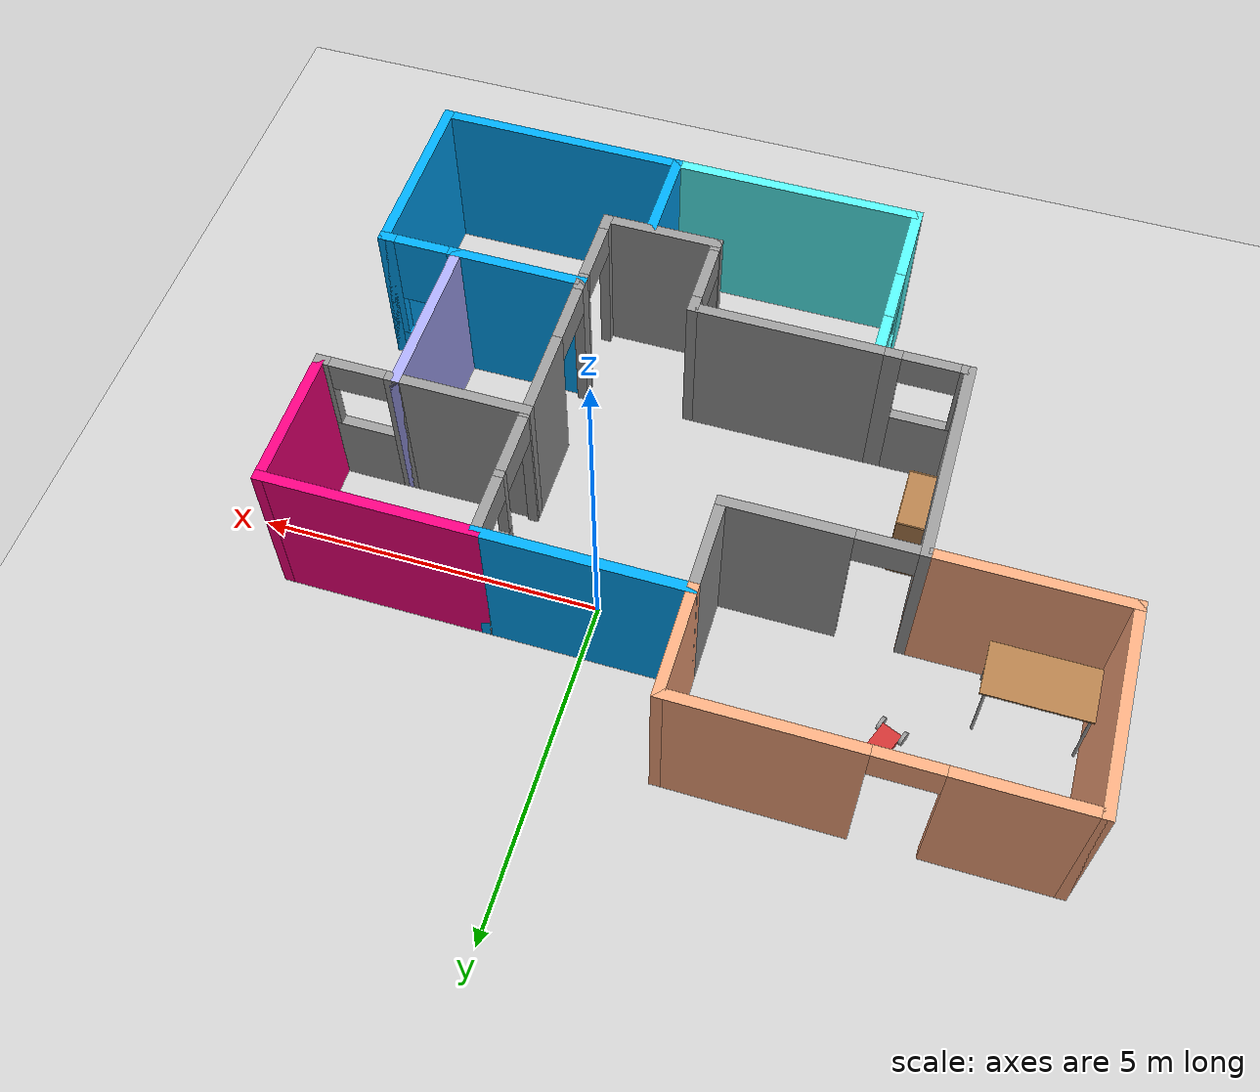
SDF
<sdf version="1.6">
 <world name="default">
  <model name="ground_plane">
   <static>1</static>
   <link name="link">
    <collision name="collision">
     <geometry><plane><normal>0 0 1</normal><size>100 100</size></plane></geometry>
     <surface>
      <contact><collide_bitmask>65535</collide_bitmask></contact>
      <friction><ode><mu>100</mu><mu2>50</mu2></ode></friction>
     </surface>
    </collision>
    <visual name="visual">
     <cast_shadows>0</cast_shadows>
     <geometry><plane><normal>0 0 1</normal><size>100 100</size></plane></geometry>
     <material>
      <script><uri>file://media/materials/scripts/gazebo.material</uri><name>Gazebo/Grey</name></script>
     </material>
    </visual>
   </link>
  </model>
  <model name="Building">
   <pose>-1.24556 -1.99914 0 0 -0 0</pose>
   <link name="Wall_0">
    <pose>-1.575 1.37479 0 0 -0 0</pose>
    <visual name="Wall_0_Visual_0">
     <pose>-1.35895 0 1.25 0 -0 0</pose>
     <geometry><box><size>0.0821 0.15 2.5</size></box></geometry>
     <material>
      <script><uri>file://media/materials/scripts/gazebo.material</uri><name>Gazebo/Grey</name></script>
      <ambient>1 1 1 1</ambient>
     </material>
     <meta><layer>0</layer></meta>
    </visual>
    <collision name="Wall_0_Collision_0">
     <geometry><box><size>0.0821 0.15 2.5</size></box></geometry>
     <pose>-1.35895 0 1.25 0 -0 0</pose>
    </collision>
    <visual name="Wall_0_Visual_1">
     <pose>0.49105 0 1.25 0 -0 0</pose>
     <geometry><box><size>1.8179 0.15 2.5</size></box></geometry>
     <material>
      <script><uri>file://media/materials/scripts/gazebo.material</uri><name>Gazebo/Grey</name></script>
      <ambient>1 1 1 1</ambient>
     </material>
     <meta><layer>0</layer></meta>
    </visual>
    <collision name="Wall_0_Collision_1">
     <geometry><box><size>1.8179 0.15 2.5</size></box></geometry>
     <pose>0.49105 0 1.25 0 -0 0</pose>
    </collision>
    <visual name="Wall_0_Visual_2">
     <pose>-0.8679 0 2.25 0 -0 0</pose>
     <geometry><box><size>0.9 0.15 0.5</size></box></geometry>
     <material>
      <script><uri>file://media/materials/scripts/gazebo.material</uri><name>Gazebo/Grey</name></script>
      <ambient>1 1 1 1</ambient>
     </material>
     <meta><layer>0</layer></meta>
    </visual>
    <collision name="Wall_0_Collision_2">
     <geometry><box><size>0.9 0.15 0.5</size></box></geometry>
     <pose>-0.8679 0 2.25 0 -0 0</pose>
    </collision>
   </link>
   <link name="Wall_1">
    <collision name="Wall_1_Collision">
     <geometry><box><size>1.5 0.15 2.5</size></box></geometry>
     <pose>0 0 1.25 0 -0 0</pose>
    </collision>
    <visual name="Wall_1_Visual">
     <pose>0 0 1.25 0 -0 0</pose>
     <geometry><box><size>1.5 0.15 2.5</size></box></geometry>
     <material>
      <script><uri>file://media/materials/scripts/gazebo.material</uri><name>Gazebo/Grey</name></script>
      <ambient>1 1 1 1</ambient>
     </material>
     <meta><layer>0</layer></meta>
    </visual>
    <pose>-0.25 2.04979 0 0 -0 1.5708</pose>
   </link>
   <link name="Wall_11">
    <collision name="Wall_11_Collision">
     <geometry><box><size>2 0.15 2.5</size></box></geometry>
     <pose>0 0 1.25 0 -0 0</pose>
    </collision>
    <visual name="Wall_11_Visual">
     <pose>0 0 1.25 0 -0 0</pose>
     <geometry><box><size>2 0.15 2.5</size></box></geometry>
     <material>
      <script><uri>file://media/materials/scripts/gazebo.material</uri><name>Gazebo/Grey</name></script>
      <ambient>0 0.666667 1 1</ambient>
     </material>
     <meta><layer>0</layer></meta>
    </visual>
    <pose>3.525 -1.62521 0 0 -0 0</pose>
   </link>
   <link name="Wall_12">
    <collision name="Wall_12_Collision">
     <geometry><box><size>2.5 0.15 2.5</size></box></geometry>
     <pose>0 0 1.25 0 -0 0</pose>
    </collision>
    <visual name="Wall_12_Visual">
     <pose>0 0 1.25 0 -0 0</pose>
     <geometry><box><size>2.5 0.15 2.5</size></box></geometry>
     <material>
      <script><uri>file://media/materials/scripts/gazebo.material</uri><name>Gazebo/Grey</name></script>
      <ambient>0.666667 0.666667 1 1</ambient>
     </material>
     <meta><layer>0</layer></meta>
    </visual>
    <pose>4.45 -0.450208 0 0 -0 1.5708</pose>
   </link>
   <link name="Wall_16">
    <pose>5 -1.62521 0 0 -0 0</pose>
    <visual name="Wall_16_Visual_0">
     <pose>-0.522443 0 1.25 0 -0 0</pose>
     <geometry><box><size>0.205115 0.15 2.5</size></box></geometry>
     <material>
      <script><uri>file://media/materials/scripts/gazebo.material</uri><name>Gazebo/Grey</name></script>
      <ambient>0 0.666667 1 1</ambient>
     </material>
     <meta><layer>0</layer></meta>
    </visual>
    <collision name="Wall_16_Collision_0">
     <geometry><box><size>0.205115 0.15 2.5</size></box></geometry>
     <pose>-0.522443 0 1.25 0 -0 0</pose>
    </collision>
    <visual name="Wall_16_Visual_1">
     <pose>0.102557 0 0.25 0 -0 0</pose>
     <geometry><box><size>1.04489 0.15 0.5</size></box></geometry>
     <material>
      <script><uri>file://media/materials/scripts/gazebo.material</uri><name>Gazebo/Grey</name></script>
      <ambient>0 0.666667 1 1</ambient>
     </material>
     <meta><layer>0</layer></meta>
    </visual>
    <collision name="Wall_16_Collision_1">
     <geometry><box><size>1.04489 0.15 0.5</size></box></geometry>
     <pose>0.102557 0 0.25 0 -0 0</pose>
    </collision>
    <visual name="Wall_16_Visual_2">
     <pose>0.502557 0 1.5 0 -0 0</pose>
     <geometry><box><size>0.244885 0.15 2</size></box></geometry>
     <material>
      <script><uri>file://media/materials/scripts/gazebo.material</uri><name>Gazebo/Grey</name></script>
      <ambient>0 0.666667 1 1</ambient>
     </material>
     <meta><layer>0</layer></meta>
    </visual>
    <collision name="Wall_16_Collision_2">
     <geometry><box><size>0.244885 0.15 2</size></box></geometry>
     <pose>0.502557 0 1.5 0 -0 0</pose>
    </collision>
    <visual name="Wall_16_Visual_3">
     <pose>-0.019885 0 1.9 0 -0 0</pose>
     <geometry><box><size>0.8 0.15 1.2</size></box></geometry>
     <material>
      <script><uri>file://media/materials/scripts/gazebo.material</uri><name>Gazebo/Grey</name></script>
      <ambient>0 0.666667 1 1</ambient>
     </material>
     <meta><layer>0</layer></meta>
    </visual>
    <collision name="Wall_16_Collision_3">
     <geometry><box><size>0.8 0.15 1.2</size></box></geometry>
     <pose>-0.019885 0 1.9 0 -0 0</pose>
    </collision>
   </link>
   <link name="Wall_17">
    <collision name="Wall_17_Collision">
     <geometry><box><size>2.75 0.15 2.5</size></box></geometry>
     <pose>0 0 1.25 0 -0 0</pose>
    </collision>
    <visual name="Wall_17_Visual">
     <pose>0 0 1.25 0 -0 0</pose>
     <geometry><box><size>2.75 0.15 2.5</size></box></geometry>
     <material>
      <script><uri>file://media/materials/scripts/gazebo.material</uri><name>Gazebo/Grey</name></script>
      <ambient>0 0.666667 1 1</ambient>
     </material>
     <meta><layer>0</layer></meta>
    </visual>
    <pose>5.55 -2.92521 0 0 0 -1.5708</pose>
   </link>
   <link name="Wall_24">
    <collision name="Wall_24_Collision">
     <geometry><box><size>2 0.15 2.5</size></box></geometry>
     <pose>0 0 1.25 0 -0 0</pose>
    </collision>
    <visual name="Wall_24_Visual">
     <pose>0 0 1.25 0 -0 0</pose>
     <geometry><box><size>2 0.15 2.5</size></box></geometry>
     <material>
      <script><uri>file://media/materials/scripts/gazebo.material</uri><name>Gazebo/Grey</name></script>
      <ambient>1 1 1 1</ambient>
     </material>
     <meta><layer>0</layer></meta>
    </visual>
    <pose>3.525 0.724792 0 0 -0 3.14159</pose>
   </link>
   <link name="Wall_26">
    <pose>5 0.724792 0 0 -0 0</pose>
    <visual name="Wall_26_Visual_0">
     <pose>-0.511581 0 1.25 0 -0 0</pose>
     <geometry><box><size>0.226838 0.15 2.5</size></box></geometry>
     <material>
      <script><uri>file://media/materials/scripts/gazebo.material</uri><name>Gazebo/Grey</name></script>
      <ambient>1 1 1 1</ambient>
     </material>
     <meta><layer>0</layer></meta>
    </visual>
    <collision name="Wall_26_Collision_0">
     <geometry><box><size>0.226838 0.15 2.5</size></box></geometry>
     <pose>-0.511581 0 1.25 0 -0 0</pose>
    </collision>
    <visual name="Wall_26_Visual_1">
     <pose>0.113419 0 0.6 0 -0 0</pose>
     <geometry><box><size>1.02316 0.15 1.2</size></box></geometry>
     <material>
      <script><uri>file://media/materials/scripts/gazebo.material</uri><name>Gazebo/Grey</name></script>
      <ambient>1 1 1 1</ambient>
     </material>
     <meta><layer>0</layer></meta>
    </visual>
    <collision name="Wall_26_Collision_1">
     <geometry><box><size>1.02316 0.15 1.2</size></box></geometry>
     <pose>0.113419 0 0.6 0 -0 0</pose>
    </collision>
    <visual name="Wall_26_Visual_2">
     <pose>0.513419 0 1.85 0 -0 0</pose>
     <geometry><box><size>0.223162 0.15 1.3</size></box></geometry>
     <material>
      <script><uri>file://media/materials/scripts/gazebo.material</uri><name>Gazebo/Grey</name></script>
      <ambient>1 1 1 1</ambient>
     </material>
     <meta><layer>0</layer></meta>
    </visual>
    <collision name="Wall_26_Collision_2">
     <geometry><box><size>0.223162 0.15 1.3</size></box></geometry>
     <pose>0.513419 0 1.85 0 -0 0</pose>
    </collision>
    <visual name="Wall_26_Visual_3">
     <pose>0.001838 0 2.25 0 -0 0</pose>
     <geometry><box><size>0.8 0.15 0.5</size></box></geometry>
     <material>
      <script><uri>file://media/materials/scripts/gazebo.material</uri><name>Gazebo/Grey</name></script>
      <ambient>1 1 1 1</ambient>
     </material>
     <meta><layer>0</layer></meta>
    </visual>
    <collision name="Wall_26_Collision_3">
     <geometry><box><size>0.8 0.15 0.5</size></box></geometry>
     <pose>0.001838 0 2.25 0 -0 0</pose>
    </collision>
   </link>
   <link name="Wall_29">
    <collision name="Wall_29_Collision">
     <geometry><box><size>3.1 0.15 2.5</size></box></geometry>
     <pose>0 0 1.25 0 -0 0</pose>
    </collision>
    <visual name="Wall_29_Visual">
     <pose>0 0 1.25 0 -0 0</pose>
     <geometry><box><size>3.1 0.15 2.5</size></box></geometry>
     <material>
      <script><uri>file://media/materials/scripts/gazebo.material</uri><name>Gazebo/Grey</name></script>
      <ambient>1 0 0.498039 1</ambient>
     </material>
     <meta><layer>0</layer></meta>
    </visual>
    <pose>4.075 2.72479 0 0 -0 0</pose>
   </link>
   <link name="Wall_3">
    <collision name="Wall_3_Collision">
     <geometry><box><size>3 0.15 2.5</size></box></geometry>
     <pose>0 0 1.25 0 -0 0</pose>
    </collision>
    <visual name="Wall_3_Visual">
     <pose>0 0 1.25 0 -0 0</pose>
     <geometry><box><size>3 0.15 2.5</size></box></geometry>
     <material>
      <script><uri>file://media/materials/scripts/gazebo.material</uri><name>Gazebo/Grey</name></script>
      <ambient>0 0.666667 1 1</ambient>
     </material>
     <meta><layer>0</layer></meta>
    </visual>
    <pose>1.175 2.72479 0 0 -0 0</pose>
   </link>
   <link name="Wall_31">
    <collision name="Wall_31_Collision">
     <geometry><box><size>2.15016 0.15 2.5</size></box></geometry>
     <pose>0 0 1.25 0 -0 0</pose>
    </collision>
    <visual name="Wall_31_Visual">
     <pose>0 0 1.25 0 -0 0</pose>
     <geometry><box><size>2.15016 0.15 2.5</size></box></geometry>
     <material>
      <script><uri>file://media/materials/scripts/gazebo.material</uri><name>Gazebo/Grey</name></script>
      <ambient>1 0 0.498039 1</ambient>
     </material>
     <meta><layer>0</layer></meta>
    </visual>
    <pose>5.55 1.72479 0 0 0 -1.5708</pose>
   </link>
   <link name="Wall_4">
    <pose>2.6 0.549792 0 0 0 -1.5708</pose>
    <visual name="Wall_4_Visual_0">
     <pose>-2.17703 0 1.25 0 -0 0</pose>
     <geometry><box><size>0.145935 0.15 2.5</size></box></geometry>
     <material>
      <script><uri>file://media/materials/scripts/gazebo.material</uri><name>Gazebo/Grey</name></script>
      <ambient>1 1 1 1</ambient>
     </material>
     <meta><layer>0</layer></meta>
    </visual>
    <collision name="Wall_4_Collision_0">
     <geometry><box><size>0.145935 0.15 2.5</size></box></geometry>
     <pose>-2.17703 0 1.25 0 -0 0</pose>
    </collision>
    <visual name="Wall_4_Visual_1">
     <pose>0.412483 0 1.25 0 -0 0</pose>
     <geometry><box><size>1.42285 0.15 2.5</size></box></geometry>
     <material>
      <script><uri>file://media/materials/scripts/gazebo.material</uri><name>Gazebo/Grey</name></script>
      <ambient>1 1 1 1</ambient>
     </material>
     <meta><layer>0</layer></meta>
    </visual>
    <collision name="Wall_4_Collision_1">
     <geometry><box><size>1.42285 0.15 2.5</size></box></geometry>
     <pose>0.412483 0 1.25 0 -0 0</pose>
    </collision>
    <visual name="Wall_4_Visual_2">
     <pose>2.13695 0 1.25 0 -0 0</pose>
     <geometry><box><size>0.226091 0.15 2.5</size></box></geometry>
     <material>
      <script><uri>file://media/materials/scripts/gazebo.material</uri><name>Gazebo/Grey</name></script>
      <ambient>1 1 1 1</ambient>
     </material>
     <meta><layer>0</layer></meta>
    </visual>
    <collision name="Wall_4_Collision_2">
     <geometry><box><size>0.226091 0.15 2.5</size></box></geometry>
     <pose>2.13695 0 1.25 0 -0 0</pose>
    </collision>
    <visual name="Wall_4_Visual_3">
     <pose>-1.65151 0 0.6 0 -0 0</pose>
     <geometry><box><size>0.905122 0.15 1.2</size></box></geometry>
     <material>
      <script><uri>file://media/materials/scripts/gazebo.material</uri><name>Gazebo/Grey</name></script>
      <ambient>1 1 1 1</ambient>
     </material>
     <meta><layer>0</layer></meta>
    </visual>
    <collision name="Wall_4_Collision_3">
     <geometry><box><size>0.905122 0.15 1.2</size></box></geometry>
     <pose>-1.65151 0 0.6 0 -0 0</pose>
    </collision>
    <visual name="Wall_4_Visual_4">
     <pose>-1.25151 0 1.85 0 -0 0</pose>
     <geometry><box><size>0.105122 0.15 1.3</size></box></geometry>
     <material>
      <script><uri>file://media/materials/scripts/gazebo.material</uri><name>Gazebo/Grey</name></script>
      <ambient>1 1 1 1</ambient>
     </material>
     <meta><layer>0</layer></meta>
    </visual>
    <collision name="Wall_4_Collision_4">
     <geometry><box><size>0.105122 0.15 1.3</size></box></geometry>
     <pose>-1.25151 0 1.85 0 -0 0</pose>
    </collision>
    <visual name="Wall_4_Visual_5">
     <pose>1.57391 0 2.25 0 -0 0</pose>
     <geometry><box><size>0.9 0.15 0.5</size></box></geometry>
     <material>
      <script><uri>file://media/materials/scripts/gazebo.material</uri><name>Gazebo/Grey</name></script>
      <ambient>1 1 1 1</ambient>
     </material>
     <meta><layer>0</layer></meta>
    </visual>
    <collision name="Wall_4_Collision_5">
     <geometry><box><size>0.9 0.15 0.5</size></box></geometry>
     <pose>1.57391 0 2.25 0 -0 0</pose>
    </collision>
    <visual name="Wall_4_Visual_6">
     <pose>-0.748944 0 2.25 0 -0 0</pose>
     <geometry><box><size>0.9 0.15 0.5</size></box></geometry>
     <material>
      <script><uri>file://media/materials/scripts/gazebo.material</uri><name>Gazebo/Grey</name></script>
      <ambient>1 1 1 1</ambient>
     </material>
     <meta><layer>0</layer></meta>
    </visual>
    <collision name="Wall_4_Collision_6">
     <geometry><box><size>0.9 0.15 0.5</size></box></geometry>
     <pose>-0.748944 0 2.25 0 -0 0</pose>
    </collision>
    <visual name="Wall_4_Visual_7">
     <pose>-1.70406 0 2.25 0 -0 0</pose>
     <geometry><box><size>0.8 0.15 0.5</size></box></geometry>
     <material>
      <script><uri>file://media/materials/scripts/gazebo.material</uri><name>Gazebo/Grey</name></script>
      <ambient>1 1 1 1</ambient>
     </material>
     <meta><layer>0</layer></meta>
    </visual>
    <collision name="Wall_4_Collision_7">
     <geometry><box><size>0.8 0.15 0.5</size></box></geometry>
     <pose>-1.70406 0 2.25 0 -0 0</pose>
    </collision>
   </link>
   <link name="Wall_41">
    <pose>2.6 -2.24421 0 0 0 -1.5708</pose>
    <visual name="Wall_41_Visual_0">
     <pose>-0.586201 0 1.25 0 -0 0</pose>
     <geometry><box><size>0.21618 0.15 2.5</size></box></geometry>
     <material>
      <script><uri>file://media/materials/scripts/gazebo.material</uri><name>Gazebo/Grey</name></script>
      <ambient>1 1 1 1</ambient>
     </material>
     <meta><layer>0</layer></meta>
    </visual>
    <collision name="Wall_41_Collision_0">
     <geometry><box><size>0.21618 0.15 2.5</size></box></geometry>
     <pose>-0.586201 0 1.25 0 -0 0</pose>
    </collision>
    <visual name="Wall_41_Visual_1">
     <pose>0.55809 0 1.25 0 -0 0</pose>
     <geometry><box><size>0.272401 0.15 2.5</size></box></geometry>
     <material>
      <script><uri>file://media/materials/scripts/gazebo.material</uri><name>Gazebo/Grey</name></script>
      <ambient>1 1 1 1</ambient>
     </material>
     <meta><layer>0</layer></meta>
    </visual>
    <collision name="Wall_41_Collision_1">
     <geometry><box><size>0.272401 0.15 2.5</size></box></geometry>
     <pose>0.55809 0 1.25 0 -0 0</pose>
    </collision>
    <visual name="Wall_41_Visual_2">
     <pose>-0.028111 0 2.25 0 -0 0</pose>
     <geometry><box><size>0.9 0.15 0.5</size></box></geometry>
     <material>
      <script><uri>file://media/materials/scripts/gazebo.material</uri><name>Gazebo/Grey</name></script>
      <ambient>1 1 1 1</ambient>
     </material>
     <meta><layer>0</layer></meta>
    </visual>
    <collision name="Wall_41_Collision_2">
     <geometry><box><size>0.9 0.15 0.5</size></box></geometry>
     <pose>-0.028111 0 2.25 0 -0 0</pose>
    </collision>
   </link>
   <link name="Wall_42">
    <collision name="Wall_42_Collision">
     <geometry><box><size>1.78 0.15 2.5</size></box></geometry>
     <pose>0 0 1.25 0 -0 0</pose>
    </collision>
    <visual name="Wall_42_Visual">
     <pose>0 0 1.25 0 -0 0</pose>
     <geometry><box><size>1.78 0.15 2.5</size></box></geometry>
     <material>
      <script><uri>file://media/materials/scripts/gazebo.material</uri><name>Gazebo/Grey</name></script>
      <ambient>1 1 1 1</ambient>
     </material>
     <meta><layer>0</layer></meta>
    </visual>
    <pose>1.785 -2.86321 0 0 -0 3.14159</pose>
   </link>
   <link name="Wall_43">
    <pose>0.97 -2.24421 0 0 -0 1.5708</pose>
    <visual name="Wall_43_Visual_0">
     <pose>-0.58591 0 1.25 0 -0 0</pose>
     <geometry><box><size>0.216762 0.15 2.5</size></box></geometry>
     <material>
      <script><uri>file://media/materials/scripts/gazebo.material</uri><name>Gazebo/Grey</name></script>
      <ambient>1 1 1 1</ambient>
     </material>
     <meta><layer>0</layer></meta>
    </visual>
    <collision name="Wall_43_Collision_0">
     <geometry><box><size>0.216762 0.15 2.5</size></box></geometry>
     <pose>-0.58591 0 1.25 0 -0 0</pose>
    </collision>
    <visual name="Wall_43_Visual_1">
     <pose>0.558381 0 1.25 0 -0 0</pose>
     <geometry><box><size>0.271819 0.15 2.5</size></box></geometry>
     <material>
      <script><uri>file://media/materials/scripts/gazebo.material</uri><name>Gazebo/Grey</name></script>
      <ambient>1 1 1 1</ambient>
     </material>
     <meta><layer>0</layer></meta>
    </visual>
    <collision name="Wall_43_Collision_1">
     <geometry><box><size>0.271819 0.15 2.5</size></box></geometry>
     <pose>0.558381 0 1.25 0 -0 0</pose>
    </collision>
    <visual name="Wall_43_Visual_2">
     <pose>-0.027529 0 2.25 0 -0 0</pose>
     <geometry><box><size>0.9 0.15 0.5</size></box></geometry>
     <material>
      <script><uri>file://media/materials/scripts/gazebo.material</uri><name>Gazebo/Grey</name></script>
      <ambient>1 1 1 1</ambient>
     </material>
     <meta><layer>0</layer></meta>
    </visual>
    <collision name="Wall_43_Collision_2">
     <geometry><box><size>0.9 0.15 0.5</size></box></geometry>
     <pose>-0.027529 0 2.25 0 -0 0</pose>
    </collision>
   </link>
   <link name="Wall_46">
    <collision name="Wall_46_Collision">
     <geometry><box><size>3.75 0.15 2.5</size></box></geometry>
     <pose>0 0 1.25 0 -0 0</pose>
    </collision>
    <visual name="Wall_46_Visual">
     <pose>0 0 1.25 0 -0 0</pose>
     <geometry><box><size>3.75 0.15 2.5</size></box></geometry>
     <material>
      <script><uri>file://media/materials/scripts/gazebo.material</uri><name>Gazebo/Grey</name></script>
      <ambient>0 0.666667 1 1</ambient>
     </material>
     <meta><layer>0</layer></meta>
    </visual>
    <pose>3.75 -4.22521 0 0 -0 3.14159</pose>
   </link>
   <link name="Wall_47">
    <collision name="Wall_47_Collision">
     <geometry><box><size>1.5 0.15 2.5</size></box></geometry>
     <pose>0 0 1.25 0 -0 0</pose>
    </collision>
    <visual name="Wall_47_Visual">
     <pose>0 0 1.25 0 -0 0</pose>
     <geometry><box><size>1.5 0.15 2.5</size></box></geometry>
     <material>
      <script><uri>file://media/materials/scripts/gazebo.material</uri><name>Gazebo/Grey</name></script>
      <ambient>0 0.666667 1 1</ambient>
     </material>
     <meta><layer>0</layer></meta>
    </visual>
    <pose>1.95 -3.55021 0 0 -0 1.5708</pose>
   </link>
   <link name="Wall_49">
    <collision name="Wall_49_Collision">
     <geometry><box><size>3.75 0.15 2.5</size></box></geometry>
     <pose>0 0 1.25 0 -0 0</pose>
    </collision>
    <visual name="Wall_49_Visual">
     <pose>0 0 1.25 0 -0 0</pose>
     <geometry><box><size>3.75 0.15 2.5</size></box></geometry>
     <material>
      <script><uri>file://media/materials/scripts/gazebo.material</uri><name>Gazebo/Grey</name></script>
      <ambient>0.333333 1 1 1</ambient>
     </material>
     <meta><layer>0</layer></meta>
    </visual>
    <pose>0.15 -4.22521 0 0 -0 3.14159</pose>
   </link>
   <link name="Wall_51">
    <pose>-1.65 -2.92521 0 0 -0 1.5708</pose>
    <visual name="Wall_51_Visual_0">
     <pose>-0.747196 0 1.25 0 -0 0</pose>
     <geometry><box><size>1.25561 0.15 2.5</size></box></geometry>
     <material>
      <script><uri>file://media/materials/scripts/gazebo.material</uri><name>Gazebo/Grey</name></script>
      <ambient>0.333333 1 1 1</ambient>
     </material>
     <meta><layer>0</layer></meta>
    </visual>
    <collision name="Wall_51_Collision_0">
     <geometry><box><size>1.25561 0.15 2.5</size></box></geometry>
     <pose>-0.747196 0 1.25 0 -0 0</pose>
    </collision>
    <visual name="Wall_51_Visual_1">
     <pose>0.627804 0 0.6 0 -0 0</pose>
     <geometry><box><size>1.49439 0.15 1.2</size></box></geometry>
     <material>
      <script><uri>file://media/materials/scripts/gazebo.material</uri><name>Gazebo/Grey</name></script>
      <ambient>0.333333 1 1 1</ambient>
     </material>
     <meta><layer>0</layer></meta>
    </visual>
    <collision name="Wall_51_Collision_1">
     <geometry><box><size>1.49439 0.15 1.2</size></box></geometry>
     <pose>0.627804 0 0.6 0 -0 0</pose>
    </collision>
    <visual name="Wall_51_Visual_2">
     <pose>1.0278 0 1.85 0 -0 0</pose>
     <geometry><box><size>0.694393 0.15 1.3</size></box></geometry>
     <material>
      <script><uri>file://media/materials/scripts/gazebo.material</uri><name>Gazebo/Grey</name></script>
      <ambient>0.333333 1 1 1</ambient>
     </material>
     <meta><layer>0</layer></meta>
    </visual>
    <collision name="Wall_51_Collision_2">
     <geometry><box><size>0.694393 0.15 1.3</size></box></geometry>
     <pose>1.0278 0 1.85 0 -0 0</pose>
    </collision>
    <visual name="Wall_51_Visual_3">
     <pose>0.280607 0 2.25 0 -0 0</pose>
     <geometry><box><size>0.8 0.15 0.5</size></box></geometry>
     <material>
      <script><uri>file://media/materials/scripts/gazebo.material</uri><name>Gazebo/Grey</name></script>
      <ambient>0.333333 1 1 1</ambient>
     </material>
     <meta><layer>0</layer></meta>
    </visual>
    <collision name="Wall_51_Collision_3">
     <geometry><box><size>0.8 0.15 0.5</size></box></geometry>
     <pose>0.280607 0 2.25 0 -0 0</pose>
    </collision>
   </link>
   <link name="Wall_52">
    <collision name="Wall_52_Collision">
     <geometry><box><size>2.77 0.15 2.5</size></box></geometry>
     <pose>0 0 1.25 0 -0 0</pose>
    </collision>
    <visual name="Wall_52_Visual">
     <pose>0 0 1.25 0 -0 0</pose>
     <geometry><box><size>2.77 0.15 2.5</size></box></geometry>
     <material>
      <script><uri>file://media/materials/scripts/gazebo.material</uri><name>Gazebo/Grey</name></script>
      <ambient>1 1 1 1</ambient>
     </material>
     <meta><layer>0</layer></meta>
    </visual>
    <pose>-0.34 -1.62521 0 0 -0 0</pose>
   </link>
   <link name="Wall_54">
    <pose>-2.275 -1.62521 0 0 -0 3.14159</pose>
    <visual name="Wall_54_Visual_0">
     <pose>-0.501383 0 1.25 0 -0 0</pose>
     <geometry><box><size>0.397234 0.15 2.5</size></box></geometry>
     <material>
      <script><uri>file://media/materials/scripts/gazebo.material</uri><name>Gazebo/Grey</name></script>
      <ambient>1 1 1 1</ambient>
     </material>
     <meta><layer>0</layer></meta>
    </visual>
    <collision name="Wall_54_Collision_0">
     <geometry><box><size>0.397234 0.15 2.5</size></box></geometry>
     <pose>-0.501383 0 1.25 0 -0 0</pose>
    </collision>
    <visual name="Wall_54_Visual_1">
     <pose>0.198617 0 0.6 0 -0 0</pose>
     <geometry><box><size>1.00277 0.15 1.2</size></box></geometry>
     <material>
      <script><uri>file://media/materials/scripts/gazebo.material</uri><name>Gazebo/Grey</name></script>
      <ambient>1 1 1 1</ambient>
     </material>
     <meta><layer>0</layer></meta>
    </visual>
    <collision name="Wall_54_Collision_1">
     <geometry><box><size>1.00277 0.15 1.2</size></box></geometry>
     <pose>0.198617 0 0.6 0 -0 0</pose>
    </collision>
    <visual name="Wall_54_Visual_2">
     <pose>0.598617 0 1.85 0 -0 0</pose>
     <geometry><box><size>0.202766 0.15 1.3</size></box></geometry>
     <material>
      <script><uri>file://media/materials/scripts/gazebo.material</uri><name>Gazebo/Grey</name></script>
      <ambient>1 1 1 1</ambient>
     </material>
     <meta><layer>0</layer></meta>
    </visual>
    <collision name="Wall_54_Collision_2">
     <geometry><box><size>0.202766 0.15 1.3</size></box></geometry>
     <pose>0.598617 0 1.85 0 -0 0</pose>
    </collision>
    <visual name="Wall_54_Visual_3">
     <pose>0.097234 0 2.25 0 -0 0</pose>
     <geometry><box><size>0.8 0.15 0.5</size></box></geometry>
     <material>
      <script><uri>file://media/materials/scripts/gazebo.material</uri><name>Gazebo/Grey</name></script>
      <ambient>1 1 1 1</ambient>
     </material>
     <meta><layer>0</layer></meta>
    </visual>
    <collision name="Wall_54_Collision_3">
     <geometry><box><size>0.8 0.15 0.5</size></box></geometry>
     <pose>0.097234 0 2.25 0 -0 0</pose>
    </collision>
   </link>
   <link name="Wall_55">
    <collision name="Wall_55_Collision">
     <geometry><box><size>3.15042 0.15 2.5</size></box></geometry>
     <pose>0 0 1.25 0 -0 0</pose>
    </collision>
    <visual name="Wall_55_Visual">
     <pose>0 0 1.25 0 -0 0</pose>
     <geometry><box><size>3.15042 0.15 2.5</size></box></geometry>
     <material>
      <script><uri>file://media/materials/scripts/gazebo.material</uri><name>Gazebo/Grey</name></script>
      <ambient>1 1 1 1</ambient>
     </material>
     <meta><layer>0</layer></meta>
    </visual>
    <pose>-2.9 -0.125208 0 0 -0 1.5708</pose>
   </link>
   <link name="Wall_57">
    <collision name="Wall_57_Collision">
     <geometry><box><size>2.8 0.15 2.5</size></box></geometry>
     <pose>0 0 1.25 0 -0 0</pose>
    </collision>
    <visual name="Wall_57_Visual">
     <pose>0 0 1.25 0 -0 0</pose>
     <geometry><box><size>2.8 0.15 2.5</size></box></geometry>
     <material>
      <script><uri>file://media/materials/scripts/gazebo.material</uri><name>Gazebo/Grey</name></script>
      <ambient>1 0.666667 0.498039 1</ambient>
     </material>
     <meta><layer>0</layer></meta>
    </visual>
    <pose>-4.225 1.37479 0 0 -0 3.14159</pose>
   </link>
   <link name="Wall_60">
    <collision name="Wall_60_Collision">
     <geometry><box><size>3 0.15 2.5</size></box></geometry>
     <pose>0 0 1.25 0 -0 0</pose>
    </collision>
    <visual name="Wall_60_Visual">
     <pose>0 0 1.25 0 -0 0</pose>
     <geometry><box><size>3 0.15 2.5</size></box></geometry>
     <material>
      <script><uri>file://media/materials/scripts/gazebo.material</uri><name>Gazebo/Grey</name></script>
      <ambient>1 0.666667 0.498039 1</ambient>
     </material>
     <meta><layer>0</layer></meta>
    </visual>
    <pose>-5.55 2.79979 0 0 -0 1.5708</pose>
   </link>
   <link name="Wall_62">
    <pose>-2.9 4.22479 0 0 -0 0</pose>
    <visual name="Wall_62_Visual_0">
     <pose>-1.77004 0 1.25 0 -0 0</pose>
     <geometry><box><size>1.90993 0.15 2.5</size></box></geometry>
     <material>
      <script><uri>file://media/materials/scripts/gazebo.material</uri><name>Gazebo/Grey</name></script>
      <ambient>1 0.666667 0.498039 1</ambient>
     </material>
     <meta><layer>0</layer></meta>
    </visual>
    <collision name="Wall_62_Collision_0">
     <geometry><box><size>1.90993 0.15 2.5</size></box></geometry>
     <pose>-1.77004 0 1.25 0 -0 0</pose>
    </collision>
    <visual name="Wall_62_Visual_1">
     <pose>1.40496 0 1.25 0 -0 0</pose>
     <geometry><box><size>2.64007 0.15 2.5</size></box></geometry>
     <material>
      <script><uri>file://media/materials/scripts/gazebo.material</uri><name>Gazebo/Grey</name></script>
      <ambient>1 0.666667 0.498039 1</ambient>
     </material>
     <meta><layer>0</layer></meta>
    </visual>
    <collision name="Wall_62_Collision_1">
     <geometry><box><size>2.64007 0.15 2.5</size></box></geometry>
     <pose>1.40496 0 1.25 0 -0 0</pose>
    </collision>
    <visual name="Wall_62_Visual_2">
     <pose>-0.365072 0 2.25 0 -0 0</pose>
     <geometry><box><size>0.9 0.15 0.5</size></box></geometry>
     <material>
      <script><uri>file://media/materials/scripts/gazebo.material</uri><name>Gazebo/Grey</name></script>
      <ambient>1 0.666667 0.498039 1</ambient>
     </material>
     <meta><layer>0</layer></meta>
    </visual>
    <collision name="Wall_62_Collision_2">
     <geometry><box><size>0.9 0.15 0.5</size></box></geometry>
     <pose>-0.365072 0 2.25 0 -0 0</pose>
    </collision>
   </link>
   <link name="Wall_63">
    <collision name="Wall_63_Collision">
     <geometry><box><size>1.65083 0.15 2.5</size></box></geometry>
     <pose>0 0 1.25 0 -0 0</pose>
    </collision>
    <visual name="Wall_63_Visual">
     <pose>0 0 1.25 0 -0 0</pose>
     <geometry><box><size>1.65083 0.15 2.5</size></box></geometry>
     <material>
      <script><uri>file://media/materials/scripts/gazebo.material</uri><name>Gazebo/Grey</name></script>
      <ambient>1 0.666667 0.498039 1</ambient>
     </material>
     <meta><layer>0</layer></meta>
    </visual>
    <pose>-0.25 3.47479 0 0 0 -1.5708</pose>
   </link>
   <static>1</static>
  </model>
  <model name="bookshelf">
   <static>1</static>
   <link name="link">
    <inertial><mass>1</mass></inertial>
    <collision name="back">
     <pose>0 0.005 0.6 0 -0 0</pose>
     <geometry><box><size>0.9 0.01 1.2</size></box></geometry>
    </collision>
    <visual name="visual1">
     <pose>0 0.005 0.6 0 -0 0</pose>
     <geometry><box><size>0.9 0.01 1.2</size></box></geometry>
     <material>
      <script><uri>file://media/materials/scripts/gazebo.material</uri><name>Gazebo/Wood</name></script>
     </material>
    </visual>
    <collision name="left_side">
     <pose>0.45 -0.195 0.6 0 -0 0</pose>
     <geometry><box><size>0.02 0.4 1.2</size></box></geometry>
    </collision>
    <visual name="visual2">
     <pose>0.45 -0.195 0.6 0 -0 0</pose>
     <geometry><box><size>0.02 0.4 1.2</size></box></geometry>
     <material>
      <script><uri>file://media/materials/scripts/gazebo.material</uri><name>Gazebo/Wood</name></script>
     </material>
    </visual>
    <collision name="right_side">
     <pose>-0.45 -0.195 0.6 0 -0 0</pose>
     <geometry><box><size>0.02 0.4 1.2</size></box></geometry>
    </collision>
    <visual name="visual3">
     <pose>-0.45 -0.195 0.6 0 -0 0</pose>
     <geometry><box><size>0.02 0.4 1.2</size></box></geometry>
     <material>
      <script><uri>file://media/materials/scripts/gazebo.material</uri><name>Gazebo/Wood</name></script>
     </material>
    </visual>
    <collision name="bottom">
     <pose>0 -0.195 0.03 0 -0 0</pose>
     <geometry><box><size>0.88 0.4 0.06</size></box></geometry>
    </collision>
    <visual name="visual4">
     <pose>0 -0.195 0.03 0 -0 0</pose>
     <geometry><box><size>0.88 0.4 0.06</size></box></geometry>
     <material>
      <script><uri>file://media/materials/scripts/gazebo.material</uri><name>Gazebo/Wood</name></script>
     </material>
    </visual>
    <collision name="top">
     <pose>0 -0.195 1.19 0 -0 0</pose>
     <geometry><box><size>0.88 0.4 0.02</size></box></geometry>
    </collision>
    <visual name="visual5">
     <pose>0 -0.195 1.19 0 -0 0</pose>
     <geometry><box><size>0.88 0.4 0.02</size></box></geometry>
     <material>
      <script><uri>file://media/materials/scripts/gazebo.material</uri><name>Gazebo/Wood</name></script>
     </material>
    </visual>
    <collision name="low_shelf">
     <pose>0 -0.195 0.43 0 -0 0</pose>
     <geometry><box><size>0.88 0.4 0.02</size></box></geometry>
    </collision>
    <visual name="visual6">
     <pose>0 -0.195 0.43 0 -0 0</pose>
     <geometry><box><size>0.88 0.4 0.02</size></box></geometry>
     <material>
      <script><uri>file://media/materials/scripts/gazebo.material</uri><name>Gazebo/Wood</name></script>
     </material>
    </visual>
    <collision name="high_shelf">
     <pose>0 -0.195 0.8 0 -0 0</pose>
     <geometry><box><size>0.88 0.4 0.02</size></box></geometry>
    </collision>
    <visual name="visual7">
     <pose>0 -0.195 0.8 0 -0 0</pose>
     <geometry><box><size>0.88 0.4 0.02</size></box></geometry>
     <material>
      <script><uri>file://media/materials/scripts/gazebo.material</uri><name>Gazebo/Wood</name></script>
     </material>
    </visual>
   </link>
   <pose>-3.69168 -2.27488 0 0 0 -1.58089</pose>
  </model>
  <model name="Robot4Wheels">
   <link name="link_0">
    <pose>-0 -0 -2.4e-05 0 -0 0</pose>
    <inertial>
     <mass>1</mass>
     <inertia>
      <ixx>0.166667</ixx>
      <ixy>0</ixy>
      <ixz>0</ixz>
      <iyy>0.166667</iyy>
      <iyz>0</iyz>
      <izz>0.166667</izz>
     </inertia>
    </inertial>
    <visual name="visual">
     <geometry><box><size>0.5 0.3 0.1</size></box></geometry>
     <material>
      <lighting>1</lighting>
      <script><uri>file://media/materials/scripts/gazebo.material</uri><name>Gazebo/Grey</name></script>
      <shader type="pixel"><normal_map>__default__</normal_map></shader>
      <ambient>0.8 0.2 0.1 1</ambient>
      <diffuse>0.8 0.2 0.2 1</diffuse>
      <specular>0.01 0.01 0.01 1</specular>
      <emissive>0 0 0 1</emissive>
     </material>
    </visual>
    <collision name="collision">
     <geometry><box><size>0.5 0.3 0.1</size></box></geometry>
     <surface>
      <friction>
       <ode><mu>1</mu><mu2>1</mu2><fdir1>0 0 0</fdir1><slip1>0</slip1><slip2>0</slip2></ode>
       <torsional>
        <coefficient>1</coefficient>
        <patch_radius>0</patch_radius>
        <surface_radius>0</surface_radius>
        <use_patch_radius>1</use_patch_radius>
        <ode><slip>0</slip></ode>
       </torsional>
      </friction>
      <bounce><restitution_coefficient>0</restitution_coefficient><threshold>1e+06</threshold></bounce>
      <contact>
       <collide_without_contact>0</collide_without_contact>
       <collide_without_contact_bitmask>1</collide_without_contact_bitmask>
       <collide_bitmask>1</collide_bitmask>
       <ode>
        <soft_cfm>0</soft_cfm>
        <soft_erp>0.2</soft_erp>
        <kp>1e+13</kp>
        <kd>1</kd>
        <max_vel>0.01</max_vel>
        <min_depth>0</min_depth>
       </ode>
       <bullet>
        <split_impulse>1</split_impulse>
        <split_impulse_penetration_threshold>-0.01</split_impulse_penetration_threshold>
        <soft_cfm>0</soft_cfm>
        <soft_erp>0.2</soft_erp>
        <kp>1e+13</kp>
        <kd>1</kd>
       </bullet>
      </contact>
     </surface>
    </collision>
   </link>
   <link name="link_1">
    <pose>-0.25 -0.175014 6e-06 1.5707 -0 0</pose>
    <inertial>
     <mass>1</mass>
     <inertia><ixx>0.145833</ixx><ixy>0</ixy><ixz>0</ixz><iyy>0.145833</iyy><iyz>0</iyz><izz>0.125</izz></inertia>
    </inertial>
    <visual name="visual">
     <geometry><cylinder><radius>0.1</radius><length>0.05</length></cylinder></geometry>
     <material>
      <lighting>1</lighting>
      <script><uri>file://media/materials/scripts/gazebo.material</uri><name>Gazebo/Grey</name></script>
      <shader type="pixel"><normal_map>__default__</normal_map></shader>
      <ambient>0.3 0.3 0.3 1</ambient>
      <diffuse>0.7 0.7 0.7 1</diffuse>
      <specular>0.01 0.01 0.01 1</specular>
      <emissive>0 0 0 1</emissive>
     </material>
    </visual>
    <collision name="collision">
     <geometry><cylinder><radius>0.1</radius><length>0.05</length></cylinder></geometry>
     <surface>
      <friction>
       <ode><mu>1</mu><mu2>1</mu2><fdir1>0 0 0</fdir1><slip1>0</slip1><slip2>0</slip2></ode>
       <torsional>
        <coefficient>1</coefficient>
        <patch_radius>0</patch_radius>
        <surface_radius>0</surface_radius>
        <use_patch_radius>1</use_patch_radius>
        <ode><slip>0</slip></ode>
       </torsional>
      </friction>
      <bounce><restitution_coefficient>0</restitution_coefficient><threshold>1e+06</threshold></bounce>
      <contact>
       <collide_without_contact>0</collide_without_contact>
       <collide_without_contact_bitmask>1</collide_without_contact_bitmask>
       <collide_bitmask>1</collide_bitmask>
       <ode>
        <soft_cfm>0</soft_cfm>
        <soft_erp>0.2</soft_erp>
        <kp>1e+13</kp>
        <kd>1</kd>
        <max_vel>0.01</max_vel>
        <min_depth>0</min_depth>
       </ode>
       <bullet>
        <split_impulse>1</split_impulse>
        <split_impulse_penetration_threshold>-0.01</split_impulse_penetration_threshold>
        <soft_cfm>0</soft_cfm>
        <soft_erp>0.2</soft_erp>
        <kp>1e+13</kp>
        <kd>1</kd>
       </bullet>
      </contact>
     </surface>
    </collision>
   </link>
   <link name="link_1_clone">
    <pose>0.25 -0.17501 6e-06 1.5707 -0 0</pose>
    <inertial>
     <mass>1</mass>
     <inertia><ixx>0.145833</ixx><ixy>0</ixy><ixz>0</ixz><iyy>0.145833</iyy><iyz>0</iyz><izz>0.125</izz></inertia>
    </inertial>
    <visual name="visual">
     <geometry><cylinder><radius>0.1</radius><length>0.05</length></cylinder></geometry>
     <material>
      <lighting>1</lighting>
      <script><uri>file://media/materials/scripts/gazebo.material</uri><name>Gazebo/Grey</name></script>
      <shader type="pixel"><normal_map>__default__</normal_map></shader>
      <ambient>0.3 0.3 0.3 1</ambient>
      <diffuse>0.7 0.7 0.7 1</diffuse>
      <specular>0.01 0.01 0.01 1</specular>
      <emissive>0 0 0 1</emissive>
     </material>
    </visual>
    <collision name="collision">
     <geometry><cylinder><radius>0.1</radius><length>0.05</length></cylinder></geometry>
     <surface>
      <friction>
       <ode><mu>1</mu><mu2>1</mu2><fdir1>0 0 0</fdir1><slip1>0</slip1><slip2>0</slip2></ode>
       <torsional>
        <coefficient>1</coefficient>
        <patch_radius>0</patch_radius>
        <surface_radius>0</surface_radius>
        <use_patch_radius>1</use_patch_radius>
        <ode><slip>0</slip></ode>
       </torsional>
      </friction>
      <bounce><restitution_coefficient>0</restitution_coefficient><threshold>1e+06</threshold></bounce>
      <contact>
       <collide_without_contact>0</collide_without_contact>
       <collide_without_contact_bitmask>1</collide_without_contact_bitmask>
       <collide_bitmask>1</collide_bitmask>
       <ode>
        <soft_cfm>0</soft_cfm>
        <soft_erp>0.2</soft_erp>
        <kp>1e+13</kp>
        <kd>1</kd>
        <max_vel>0.01</max_vel>
        <min_depth>0</min_depth>
       </ode>
       <bullet>
        <split_impulse>1</split_impulse>
        <split_impulse_penetration_threshold>-0.01</split_impulse_penetration_threshold>
        <soft_cfm>0</soft_cfm>
        <soft_erp>0.2</soft_erp>
        <kp>1e+13</kp>
        <kd>1</kd>
       </bullet>
      </contact>
     </surface>
    </collision>
   </link>
   <link name="link_1_clone_0">
    <pose>0.25 0.17501 6e-06 1.5707 -0 0</pose>
    <inertial>
     <mass>1</mass>
     <inertia><ixx>0.145833</ixx><ixy>0</ixy><ixz>0</ixz><iyy>0.145833</iyy><iyz>0</iyz><izz>0.125</izz></inertia>
    </inertial>
    <visual name="visual">
     <geometry><cylinder><radius>0.1</radius><length>0.05</length></cylinder></geometry>
     <material>
      <lighting>1</lighting>
      <script><uri>file://media/materials/scripts/gazebo.material</uri><name>Gazebo/Grey</name></script>
      <shader type="pixel"><normal_map>__default__</normal_map></shader>
      <ambient>0.3 0.3 0.3 1</ambient>
      <diffuse>0.7 0.7 0.7 1</diffuse>
      <specular>0.01 0.01 0.01 1</specular>
      <emissive>0 0 0 1</emissive>
     </material>
    </visual>
    <collision name="collision">
     <geometry><cylinder><radius>0.1</radius><length>0.05</length></cylinder></geometry>
     <surface>
      <friction>
       <ode><mu>1</mu><mu2>1</mu2><fdir1>0 0 0</fdir1><slip1>0</slip1><slip2>0</slip2></ode>
       <torsional>
        <coefficient>1</coefficient>
        <patch_radius>0</patch_radius>
        <surface_radius>0</surface_radius>
        <use_patch_radius>1</use_patch_radius>
        <ode><slip>0</slip></ode>
       </torsional>
      </friction>
      <bounce><restitution_coefficient>0</restitution_coefficient><threshold>1e+06</threshold></bounce>
      <contact>
       <collide_without_contact>0</collide_without_contact>
       <collide_without_contact_bitmask>1</collide_without_contact_bitmask>
       <collide_bitmask>1</collide_bitmask>
       <ode>
        <soft_cfm>0</soft_cfm>
        <soft_erp>0.2</soft_erp>
        <kp>1e+13</kp>
        <kd>1</kd>
        <max_vel>0.01</max_vel>
        <min_depth>0</min_depth>
       </ode>
       <bullet>
        <split_impulse>1</split_impulse>
        <split_impulse_penetration_threshold>-0.01</split_impulse_penetration_threshold>
        <soft_cfm>0</soft_cfm>
        <soft_erp>0.2</soft_erp>
        <kp>1e+13</kp>
        <kd>1</kd>
       </bullet>
      </contact>
     </surface>
    </collision>
   </link>
   <link name="link_1_clone_1">
    <pose>-0.25 0.17501 6e-06 1.5707 -0 0</pose>
    <inertial>
     <mass>1</mass>
     <inertia><ixx>0.145833</ixx><ixy>0</ixy><ixz>0</ixz><iyy>0.145833</iyy><iyz>0</iyz><izz>0.125</izz></inertia>
    </inertial>
    <visual name="visual">
     <geometry><cylinder><radius>0.1</radius><length>0.05</length></cylinder></geometry>
     <material>
      <lighting>1</lighting>
      <script><uri>file://media/materials/scripts/gazebo.material</uri><name>Gazebo/Grey</name></script>
      <shader type="pixel"><normal_map>__default__</normal_map></shader>
      <ambient>0.3 0.3 0.3 1</ambient>
      <diffuse>0.7 0.7 0.7 1</diffuse>
      <specular>0.01 0.01 0.01 1</specular>
      <emissive>0 0 0 1</emissive>
     </material>
    </visual>
    <collision name="collision">
     <geometry><cylinder><radius>0.1</radius><length>0.05</length></cylinder></geometry>
     <surface>
      <friction>
       <ode><mu>1</mu><mu2>1</mu2><fdir1>0 0 0</fdir1><slip1>0</slip1><slip2>0</slip2></ode>
       <torsional>
        <coefficient>1</coefficient>
        <patch_radius>0</patch_radius>
        <surface_radius>0</surface_radius>
        <use_patch_radius>1</use_patch_radius>
        <ode><slip>0</slip></ode>
       </torsional>
      </friction>
      <bounce><restitution_coefficient>0</restitution_coefficient><threshold>1e+06</threshold></bounce>
      <contact>
       <collide_without_contact>0</collide_without_contact>
       <collide_without_contact_bitmask>1</collide_without_contact_bitmask>
       <collide_bitmask>1</collide_bitmask>
       <ode>
        <soft_cfm>0</soft_cfm>
        <soft_erp>0.2</soft_erp>
        <kp>1e+13</kp>
        <kd>1</kd>
        <max_vel>0.01</max_vel>
        <min_depth>0</min_depth>
       </ode>
       <bullet>
        <split_impulse>1</split_impulse>
        <split_impulse_penetration_threshold>-0.01</split_impulse_penetration_threshold>
        <soft_cfm>0</soft_cfm>
        <soft_erp>0.2</soft_erp>
        <kp>1e+13</kp>
        <kd>1</kd>
       </bullet>
      </contact>
     </surface>
    </collision>
   </link>
   <joint name="link_0_JOINT_0" type="revolute">
    <parent>link_0</parent>
    <child>link_1_clone</child>
    <axis>
     <xyz>0 0 1</xyz>
     <limit>
      <lower>-1.79769e+308</lower>
      <upper>1.79769e+308</upper>
      <effort>-1</effort>
      <velocity>-1</velocity>
     </limit>
     <dynamics>
      <spring_reference>0</spring_reference>
      <spring_stiffness>0</spring_stiffness>
      <damping>0</damping>
     </dynamics>
     <use_parent_model_frame>0</use_parent_model_frame>
    </axis>
    <physics>
     <ode><limit><cfm>0</cfm><erp>0.2</erp></limit><suspension><cfm>0</cfm><erp>0.2</erp></suspension></ode>
    </physics>
   </joint>
   <joint name="link_0_JOINT_1" type="revolute">
    <parent>link_0</parent>
    <child>link_1_clone_0</child>
    <axis>
     <xyz>0 0 1</xyz>
     <limit>
      <lower>-1.79769e+308</lower>
      <upper>1.79769e+308</upper>
      <effort>-1</effort>
      <velocity>-1</velocity>
     </limit>
     <dynamics>
      <spring_reference>0</spring_reference>
      <spring_stiffness>0</spring_stiffness>
      <damping>0</damping>
     </dynamics>
     <use_parent_model_frame>0</use_parent_model_frame>
    </axis>
    <physics>
     <ode><limit><cfm>0</cfm><erp>0.2</erp></limit><suspension><cfm>0</cfm><erp>0.2</erp></suspension></ode>
    </physics>
   </joint>
   <joint name="link_0_JOINT_2" type="revolute">
    <parent>link_0</parent>
    <child>link_1_clone_1</child>
    <axis>
     <xyz>0 0 1</xyz>
     <limit>
      <lower>-1.79769e+308</lower>
      <upper>1.79769e+308</upper>
      <effort>-1</effort>
      <velocity>-1</velocity>
     </limit>
     <dynamics>
      <spring_reference>0</spring_reference>
      <spring_stiffness>0</spring_stiffness>
      <damping>0</damping>
     </dynamics>
     <use_parent_model_frame>0</use_parent_model_frame>
    </axis>
    <physics>
     <ode><limit><cfm>0</cfm><erp>0.2</erp></limit><suspension><cfm>0</cfm><erp>0.2</erp></suspension></ode>
    </physics>
   </joint>
   <joint name="link_0_JOINT_3" type="revolute">
    <parent>link_0</parent>
    <child>link_1</child>
    <axis>
     <xyz>0 0 1</xyz>
     <limit>
      <lower>-1.79769e+308</lower>
      <upper>1.79769e+308</upper>
      <effort>-1</effort>
      <velocity>-1</velocity>
     </limit>
     <dynamics>
      <spring_reference>0</spring_reference>
      <spring_stiffness>0</spring_stiffness>
      <damping>0</damping>
     </dynamics>
     <use_parent_model_frame>0</use_parent_model_frame>
    </axis>
    <physics>
     <ode><limit><cfm>0</cfm><erp>0.2</erp></limit><suspension><cfm>0</cfm><erp>0.2</erp></suspension></ode>
    </physics>
   </joint>
   <static>0</static>
   <pose>-4.20871 0.916108 0.099992 -0 -1.6e-05 -1.95749</pose>
  </model>
  <model name="table">
   <static>1</static>
   <link name="link">
    <collision name="surface">
     <pose>0 0 1 0 -0 0</pose>
     <geometry><box><size>1.5 0.8 0.03</size></box></geometry>
     <surface><friction><ode><mu>0.6</mu><mu2>0.6</mu2></ode></friction></surface>
    </collision>
    <visual name="visual1">
     <pose>0 0 1 0 -0 0</pose>
     <geometry><box><size>1.5 0.8 0.03</size></box></geometry>
     <material>
      <script><uri>file://media/materials/scripts/gazebo.material</uri><name>Gazebo/Wood</name></script>
     </material>
    </visual>
    <collision name="front_left_leg">
     <pose>0.68 0.38 0.5 0 -0 0</pose>
     <geometry><cylinder><radius>0.02</radius><length>1</length></cylinder></geometry>
    </collision>
    <visual name="front_left_leg">
     <pose>0.68 0.38 0.5 0 -0 0</pose>
     <geometry><cylinder><radius>0.02</radius><length>1</length></cylinder></geometry>
     <material>
      <script><uri>file://media/materials/scripts/gazebo.material</uri><name>Gazebo/Grey</name></script>
     </material>
    </visual>
    <collision name="front_right_leg">
     <pose>0.68 -0.38 0.5 0 -0 0</pose>
     <geometry><cylinder><radius>0.02</radius><length>1</length></cylinder></geometry>
    </collision>
    <visual name="front_right_leg">
     <pose>0.68 -0.38 0.5 0 -0 0</pose>
     <geometry><cylinder><radius>0.02</radius><length>1</length></cylinder></geometry>
     <material>
      <script><uri>file://media/materials/scripts/gazebo.material</uri><name>Gazebo/Grey</name></script>
     </material>
    </visual>
    <collision name="back_right_leg">
     <pose>-0.68 -0.38 0.5 0 -0 0</pose>
     <geometry><cylinder><radius>0.02</radius><length>1</length></cylinder></geometry>
    </collision>
    <visual name="back_right_leg">
     <pose>-0.68 -0.38 0.5 0 -0 0</pose>
     <geometry><cylinder><radius>0.02</radius><length>1</length></cylinder></geometry>
     <material>
      <script><uri>file://media/materials/scripts/gazebo.material</uri><name>Gazebo/Grey</name></script>
     </material>
    </visual>
    <collision name="back_left_leg">
     <pose>-0.68 0.38 0.5 0 -0 0</pose>
     <geometry><cylinder><radius>0.02</radius><length>1</length></cylinder></geometry>
    </collision>
    <visual name="back_left_leg">
     <pose>-0.68 0.38 0.5 0 -0 0</pose>
     <geometry><cylinder><radius>0.02</radius><length>1</length></cylinder></geometry>
     <material>
      <script><uri>file://media/materials/scripts/gazebo.material</uri><name>Gazebo/Grey</name></script>
     </material>
    </visual>
   </link>
   <pose>-5.98602 -0.097539 0 0 -0 0</pose>
  </model>
 </world>
</sdf>
